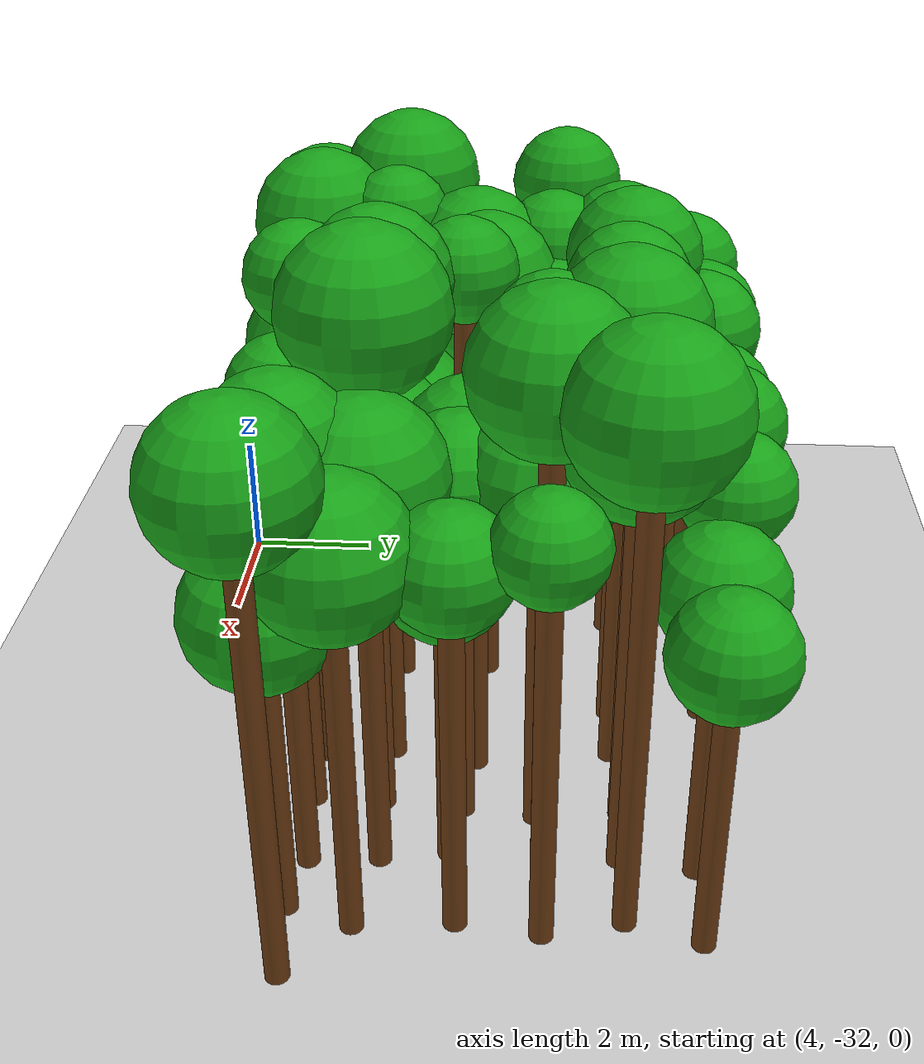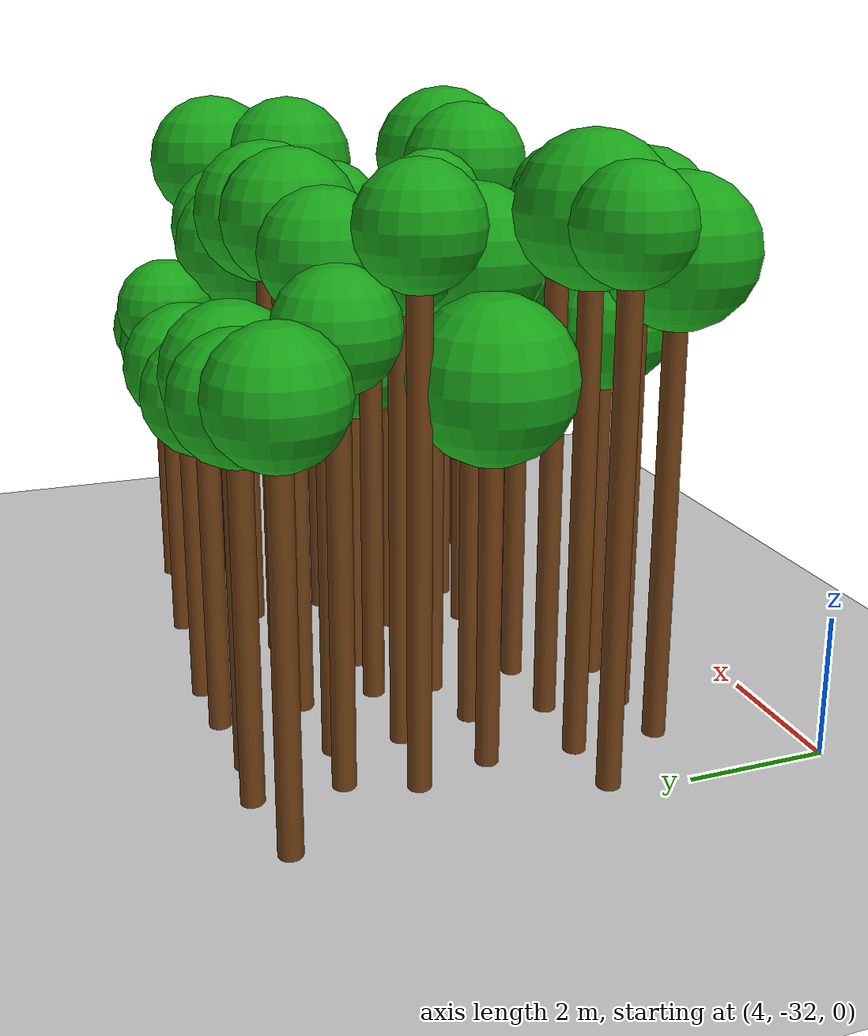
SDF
<sdf version="1.6">
 <world name="forest_world">
  <include><uri>model://sun</uri></include>
  <include><uri>model://ground_plane</uri></include>
  <model name="tree_1683_trunk">
   <static>true</static>
   <pose>4.26 -28.93 3.42 0 0 0</pose>
   <link name="link">
    <collision name="collision">
     <geometry><cylinder><radius>0.16</radius><length>6.84</length></cylinder></geometry>
    </collision>
    <visual name="visual">
     <geometry><cylinder><radius>0.16</radius><length>6.84</length></cylinder></geometry>
     <material><ambient>0.35 0.20 0.05 1</ambient><diffuse>0.45 0.25 0.08 1</diffuse></material>
    </visual>
   </link>
  </model>
  <model name="tree_1683_leaf">
   <static>true</static>
   <pose>4.26 -28.93 7.29 0 0 0</pose>
   <link name="link">
    <collision name="collision"><geometry><sphere><radius>0.76</radius></sphere></geometry></collision>
    <visual name="visual">
     <geometry><sphere><radius>0.76</radius></sphere></geometry>
     <material><ambient>0.05 0.45 0.05 1</ambient><diffuse>0.10 0.65 0.10 1</diffuse></material>
    </visual>
   </link>
  </model>
  <model name="tree_1687_trunk">
   <static>true</static>
   <pose>4.16 -24.68 2.57 0 0 0</pose>
   <link name="link">
    <collision name="collision">
     <geometry><cylinder><radius>0.16</radius><length>5.14</length></cylinder></geometry>
    </collision>
    <visual name="visual">
     <geometry><cylinder><radius>0.16</radius><length>5.14</length></cylinder></geometry>
     <material><ambient>0.35 0.20 0.05 1</ambient><diffuse>0.45 0.25 0.08 1</diffuse></material>
    </visual>
   </link>
  </model>
  <model name="tree_1687_leaf">
   <static>true</static>
   <pose>4.16 -24.68 5.64 0 0 0</pose>
   <link name="link">
    <collision name="collision"><geometry><sphere><radius>0.84</radius></sphere></geometry></collision>
    <visual name="visual">
     <geometry><sphere><radius>0.84</radius></sphere></geometry>
     <material><ambient>0.05 0.45 0.05 1</ambient><diffuse>0.10 0.65 0.10 1</diffuse></material>
    </visual>
   </link>
  </model>
  <model name="tree_1737_trunk">
   <static>true</static>
   <pose>5.24 -30.14 3.08 0 0 0</pose>
   <link name="link">
    <collision name="collision">
     <geometry><cylinder><radius>0.16</radius><length>6.17</length></cylinder></geometry>
    </collision>
    <visual name="visual">
     <geometry><cylinder><radius>0.16</radius><length>6.17</length></cylinder></geometry>
     <material><ambient>0.35 0.20 0.05 1</ambient><diffuse>0.45 0.25 0.08 1</diffuse></material>
    </visual>
   </link>
  </model>
  <model name="tree_1737_leaf">
   <static>true</static>
   <pose>5.24 -30.14 6.79 0 0 0</pose>
   <link name="link">
    <collision name="collision"><geometry><sphere><radius>1.03</radius></sphere></geometry></collision>
    <visual name="visual">
     <geometry><sphere><radius>1.03</radius></sphere></geometry>
     <material><ambient>0.05 0.45 0.05 1</ambient><diffuse>0.10 0.65 0.10 1</diffuse></material>
    </visual>
   </link>
  </model>
  <model name="tree_1738_trunk">
   <static>true</static>
   <pose>5.20 -28.89 3.38 0 0 0</pose>
   <link name="link">
    <collision name="collision">
     <geometry><cylinder><radius>0.16</radius><length>6.76</length></cylinder></geometry>
    </collision>
    <visual name="visual">
     <geometry><cylinder><radius>0.16</radius><length>6.76</length></cylinder></geometry>
     <material><ambient>0.35 0.20 0.05 1</ambient><diffuse>0.45 0.25 0.08 1</diffuse></material>
    </visual>
   </link>
  </model>
  <model name="tree_1738_leaf">
   <static>true</static>
   <pose>5.20 -28.89 7.36 0 0 0</pose>
   <link name="link">
    <collision name="collision"><geometry><sphere><radius>1.00</radius></sphere></geometry></collision>
    <visual name="visual">
     <geometry><sphere><radius>1.00</radius></sphere></geometry>
     <material><ambient>0.05 0.45 0.05 1</ambient><diffuse>0.10 0.65 0.10 1</diffuse></material>
    </visual>
   </link>
  </model>
  <model name="tree_1739_trunk">
   <static>true</static>
   <pose>5.29 -27.64 2.33 0 0 0</pose>
   <link name="link">
    <collision name="collision">
     <geometry><cylinder><radius>0.16</radius><length>4.65</length></cylinder></geometry>
    </collision>
    <visual name="visual">
     <geometry><cylinder><radius>0.16</radius><length>4.65</length></cylinder></geometry>
     <material><ambient>0.35 0.20 0.05 1</ambient><diffuse>0.45 0.25 0.08 1</diffuse></material>
    </visual>
   </link>
  </model>
  <model name="tree_1739_leaf">
   <static>true</static>
   <pose>5.29 -27.64 5.31 0 0 0</pose>
   <link name="link">
    <collision name="collision"><geometry><sphere><radius>1.10</radius></sphere></geometry></collision>
    <visual name="visual">
     <geometry><sphere><radius>1.10</radius></sphere></geometry>
     <material><ambient>0.05 0.45 0.05 1</ambient><diffuse>0.10 0.65 0.10 1</diffuse></material>
    </visual>
   </link>
  </model>
  <model name="tree_1740_trunk">
   <static>true</static>
   <pose>5.02 -26.59 3.40 0 0 0</pose>
   <link name="link">
    <collision name="collision">
     <geometry><cylinder><radius>0.16</radius><length>6.80</length></cylinder></geometry>
    </collision>
    <visual name="visual">
     <geometry><cylinder><radius>0.16</radius><length>6.80</length></cylinder></geometry>
     <material><ambient>0.35 0.20 0.05 1</ambient><diffuse>0.45 0.25 0.08 1</diffuse></material>
    </visual>
   </link>
  </model>
  <model name="tree_1740_leaf">
   <static>true</static>
   <pose>5.02 -26.59 7.28 0 0 0</pose>
   <link name="link">
    <collision name="collision"><geometry><sphere><radius>0.80</radius></sphere></geometry></collision>
    <visual name="visual">
     <geometry><sphere><radius>0.80</radius></sphere></geometry>
     <material><ambient>0.05 0.45 0.05 1</ambient><diffuse>0.10 0.65 0.10 1</diffuse></material>
    </visual>
   </link>
  </model>
  <model name="tree_1741_trunk">
   <static>true</static>
   <pose>5.35 -25.67 2.79 0 0 0</pose>
   <link name="link">
    <collision name="collision">
     <geometry><cylinder><radius>0.16</radius><length>5.58</length></cylinder></geometry>
    </collision>
    <visual name="visual">
     <geometry><cylinder><radius>0.16</radius><length>5.58</length></cylinder></geometry>
     <material><ambient>0.35 0.20 0.05 1</ambient><diffuse>0.45 0.25 0.08 1</diffuse></material>
    </visual>
   </link>
  </model>
  <model name="tree_1741_leaf">
   <static>true</static>
   <pose>5.35 -25.67 6.06 0 0 0</pose>
   <link name="link">
    <collision name="collision"><geometry><sphere><radius>0.80</radius></sphere></geometry></collision>
    <visual name="visual">
     <geometry><sphere><radius>0.80</radius></sphere></geometry>
     <material><ambient>0.05 0.45 0.05 1</ambient><diffuse>0.10 0.65 0.10 1</diffuse></material>
    </visual>
   </link>
  </model>
  <model name="tree_1742_trunk">
   <static>true</static>
   <pose>5.38 -24.47 2.41 0 0 0</pose>
   <link name="link">
    <collision name="collision">
     <geometry><cylinder><radius>0.16</radius><length>4.83</length></cylinder></geometry>
    </collision>
    <visual name="visual">
     <geometry><cylinder><radius>0.16</radius><length>4.83</length></cylinder></geometry>
     <material><ambient>0.35 0.20 0.05 1</ambient><diffuse>0.45 0.25 0.08 1</diffuse></material>
    </visual>
   </link>
  </model>
  <model name="tree_1742_leaf">
   <static>true</static>
   <pose>5.38 -24.47 5.33 0 0 0</pose>
   <link name="link">
    <collision name="collision"><geometry><sphere><radius>0.84</radius></sphere></geometry></collision>
    <visual name="visual">
     <geometry><sphere><radius>0.84</radius></sphere></geometry>
     <material><ambient>0.05 0.45 0.05 1</ambient><diffuse>0.10 0.65 0.10 1</diffuse></material>
    </visual>
   </link>
  </model>
  <model name="tree_1792_trunk">
   <static>true</static>
   <pose>6.17 -30.07 3.21 0 0 0</pose>
   <link name="link">
    <collision name="collision">
     <geometry><cylinder><radius>0.16</radius><length>6.42</length></cylinder></geometry>
    </collision>
    <visual name="visual">
     <geometry><cylinder><radius>0.16</radius><length>6.42</length></cylinder></geometry>
     <material><ambient>0.35 0.20 0.05 1</ambient><diffuse>0.45 0.25 0.08 1</diffuse></material>
    </visual>
   </link>
  </model>
  <model name="tree_1792_leaf">
   <static>true</static>
   <pose>6.17 -30.07 7.04 0 0 0</pose>
   <link name="link">
    <collision name="collision"><geometry><sphere><radius>1.02</radius></sphere></geometry></collision>
    <visual name="visual">
     <geometry><sphere><radius>1.02</radius></sphere></geometry>
     <material><ambient>0.05 0.45 0.05 1</ambient><diffuse>0.10 0.65 0.10 1</diffuse></material>
    </visual>
   </link>
  </model>
  <model name="tree_1793_trunk">
   <static>true</static>
   <pose>6.36 -28.97 3.37 0 0 0</pose>
   <link name="link">
    <collision name="collision">
     <geometry><cylinder><radius>0.16</radius><length>6.75</length></cylinder></geometry>
    </collision>
    <visual name="visual">
     <geometry><cylinder><radius>0.16</radius><length>6.75</length></cylinder></geometry>
     <material><ambient>0.35 0.20 0.05 1</ambient><diffuse>0.45 0.25 0.08 1</diffuse></material>
    </visual>
   </link>
  </model>
  <model name="tree_1793_leaf">
   <static>true</static>
   <pose>6.36 -28.97 7.18 0 0 0</pose>
   <link name="link">
    <collision name="collision"><geometry><sphere><radius>0.72</radius></sphere></geometry></collision>
    <visual name="visual">
     <geometry><sphere><radius>0.72</radius></sphere></geometry>
     <material><ambient>0.05 0.45 0.05 1</ambient><diffuse>0.10 0.65 0.10 1</diffuse></material>
    </visual>
   </link>
  </model>
  <model name="tree_1794_trunk">
   <static>true</static>
   <pose>6.46 -27.83 3.04 0 0 0</pose>
   <link name="link">
    <collision name="collision">
     <geometry><cylinder><radius>0.16</radius><length>6.09</length></cylinder></geometry>
    </collision>
    <visual name="visual">
     <geometry><cylinder><radius>0.16</radius><length>6.09</length></cylinder></geometry>
     <material><ambient>0.35 0.20 0.05 1</ambient><diffuse>0.45 0.25 0.08 1</diffuse></material>
    </visual>
   </link>
  </model>
  <model name="tree_1794_leaf">
   <static>true</static>
   <pose>6.46 -27.83 6.67 0 0 0</pose>
   <link name="link">
    <collision name="collision"><geometry><sphere><radius>0.97</radius></sphere></geometry></collision>
    <visual name="visual">
     <geometry><sphere><radius>0.97</radius></sphere></geometry>
     <material><ambient>0.05 0.45 0.05 1</ambient><diffuse>0.10 0.65 0.10 1</diffuse></material>
    </visual>
   </link>
  </model>
  <model name="tree_1795_trunk">
   <static>true</static>
   <pose>6.20 -26.73 3.15 0 0 0</pose>
   <link name="link">
    <collision name="collision">
     <geometry><cylinder><radius>0.16</radius><length>6.29</length></cylinder></geometry>
    </collision>
    <visual name="visual">
     <geometry><cylinder><radius>0.16</radius><length>6.29</length></cylinder></geometry>
     <material><ambient>0.35 0.20 0.05 1</ambient><diffuse>0.45 0.25 0.08 1</diffuse></material>
    </visual>
   </link>
  </model>
  <model name="tree_1795_leaf">
   <static>true</static>
   <pose>6.20 -26.73 6.76 0 0 0</pose>
   <link name="link">
    <collision name="collision"><geometry><sphere><radius>0.77</radius></sphere></geometry></collision>
    <visual name="visual">
     <geometry><sphere><radius>0.77</radius></sphere></geometry>
     <material><ambient>0.05 0.45 0.05 1</ambient><diffuse>0.10 0.65 0.10 1</diffuse></material>
    </visual>
   </link>
  </model>
  <model name="tree_1796_trunk">
   <static>true</static>
   <pose>6.21 -25.76 3.16 0 0 0</pose>
   <link name="link">
    <collision name="collision">
     <geometry><cylinder><radius>0.16</radius><length>6.32</length></cylinder></geometry>
    </collision>
    <visual name="visual">
     <geometry><cylinder><radius>0.16</radius><length>6.32</length></cylinder></geometry>
     <material><ambient>0.35 0.20 0.05 1</ambient><diffuse>0.45 0.25 0.08 1</diffuse></material>
    </visual>
   </link>
  </model>
  <model name="tree_1796_leaf">
   <static>true</static>
   <pose>6.21 -25.76 6.83 0 0 0</pose>
   <link name="link">
    <collision name="collision"><geometry><sphere><radius>0.84</radius></sphere></geometry></collision>
    <visual name="visual">
     <geometry><sphere><radius>0.84</radius></sphere></geometry>
     <material><ambient>0.05 0.45 0.05 1</ambient><diffuse>0.10 0.65 0.10 1</diffuse></material>
    </visual>
   </link>
  </model>
  <model name="tree_1797_trunk">
   <static>true</static>
   <pose>6.21 -24.55 2.46 0 0 0</pose>
   <link name="link">
    <collision name="collision">
     <geometry><cylinder><radius>0.16</radius><length>4.92</length></cylinder></geometry>
    </collision>
    <visual name="visual">
     <geometry><cylinder><radius>0.16</radius><length>4.92</length></cylinder></geometry>
     <material><ambient>0.35 0.20 0.05 1</ambient><diffuse>0.45 0.25 0.08 1</diffuse></material>
    </visual>
   </link>
  </model>
  <model name="tree_1797_leaf">
   <static>true</static>
   <pose>6.21 -24.55 5.45 0 0 0</pose>
   <link name="link">
    <collision name="collision"><geometry><sphere><radius>0.89</radius></sphere></geometry></collision>
    <visual name="visual">
     <geometry><sphere><radius>0.89</radius></sphere></geometry>
     <material><ambient>0.05 0.45 0.05 1</ambient><diffuse>0.10 0.65 0.10 1</diffuse></material>
    </visual>
   </link>
  </model>
  <model name="tree_1847_trunk">
   <static>true</static>
   <pose>7.23 -30.14 2.45 0 0 0</pose>
   <link name="link">
    <collision name="collision">
     <geometry><cylinder><radius>0.16</radius><length>4.91</length></cylinder></geometry>
    </collision>
    <visual name="visual">
     <geometry><cylinder><radius>0.16</radius><length>4.91</length></cylinder></geometry>
     <material><ambient>0.35 0.20 0.05 1</ambient><diffuse>0.45 0.25 0.08 1</diffuse></material>
    </visual>
   </link>
  </model>
  <model name="tree_1847_leaf">
   <static>true</static>
   <pose>7.23 -30.14 5.52 0 0 0</pose>
   <link name="link">
    <collision name="collision"><geometry><sphere><radius>1.02</radius></sphere></geometry></collision>
    <visual name="visual">
     <geometry><sphere><radius>1.02</radius></sphere></geometry>
     <material><ambient>0.05 0.45 0.05 1</ambient><diffuse>0.10 0.65 0.10 1</diffuse></material>
    </visual>
   </link>
  </model>
  <model name="tree_1848_trunk">
   <static>true</static>
   <pose>7.55 -28.95 2.06 0 0 0</pose>
   <link name="link">
    <collision name="collision">
     <geometry><cylinder><radius>0.16</radius><length>4.13</length></cylinder></geometry>
    </collision>
    <visual name="visual">
     <geometry><cylinder><radius>0.16</radius><length>4.13</length></cylinder></geometry>
     <material><ambient>0.35 0.20 0.05 1</ambient><diffuse>0.45 0.25 0.08 1</diffuse></material>
    </visual>
   </link>
  </model>
  <model name="tree_1848_leaf">
   <static>true</static>
   <pose>7.55 -28.95 4.76 0 0 0</pose>
   <link name="link">
    <collision name="collision"><geometry><sphere><radius>1.05</radius></sphere></geometry></collision>
    <visual name="visual">
     <geometry><sphere><radius>1.05</radius></sphere></geometry>
     <material><ambient>0.05 0.45 0.05 1</ambient><diffuse>0.10 0.65 0.10 1</diffuse></material>
    </visual>
   </link>
  </model>
  <model name="tree_1849_trunk">
   <static>true</static>
   <pose>7.46 -27.62 3.08 0 0 0</pose>
   <link name="link">
    <collision name="collision">
     <geometry><cylinder><radius>0.16</radius><length>6.16</length></cylinder></geometry>
    </collision>
    <visual name="visual">
     <geometry><cylinder><radius>0.16</radius><length>6.16</length></cylinder></geometry>
     <material><ambient>0.35 0.20 0.05 1</ambient><diffuse>0.45 0.25 0.08 1</diffuse></material>
    </visual>
   </link>
  </model>
  <model name="tree_1849_leaf">
   <static>true</static>
   <pose>7.46 -27.62 6.72 0 0 0</pose>
   <link name="link">
    <collision name="collision"><geometry><sphere><radius>0.93</radius></sphere></geometry></collision>
    <visual name="visual">
     <geometry><sphere><radius>0.93</radius></sphere></geometry>
     <material><ambient>0.05 0.45 0.05 1</ambient><diffuse>0.10 0.65 0.10 1</diffuse></material>
    </visual>
   </link>
  </model>
  <model name="tree_1850_trunk">
   <static>true</static>
   <pose>7.57 -26.74 2.74 0 0 0</pose>
   <link name="link">
    <collision name="collision">
     <geometry><cylinder><radius>0.16</radius><length>5.48</length></cylinder></geometry>
    </collision>
    <visual name="visual">
     <geometry><cylinder><radius>0.16</radius><length>5.48</length></cylinder></geometry>
     <material><ambient>0.35 0.20 0.05 1</ambient><diffuse>0.45 0.25 0.08 1</diffuse></material>
    </visual>
   </link>
  </model>
  <model name="tree_1850_leaf">
   <static>true</static>
   <pose>7.57 -26.74 6.05 0 0 0</pose>
   <link name="link">
    <collision name="collision"><geometry><sphere><radius>0.95</radius></sphere></geometry></collision>
    <visual name="visual">
     <geometry><sphere><radius>0.95</radius></sphere></geometry>
     <material><ambient>0.05 0.45 0.05 1</ambient><diffuse>0.10 0.65 0.10 1</diffuse></material>
    </visual>
   </link>
  </model>
  <model name="tree_1851_trunk">
   <static>true</static>
   <pose>7.51 -25.64 3.28 0 0 0</pose>
   <link name="link">
    <collision name="collision">
     <geometry><cylinder><radius>0.16</radius><length>6.56</length></cylinder></geometry>
    </collision>
    <visual name="visual">
     <geometry><cylinder><radius>0.16</radius><length>6.56</length></cylinder></geometry>
     <material><ambient>0.35 0.20 0.05 1</ambient><diffuse>0.45 0.25 0.08 1</diffuse></material>
    </visual>
   </link>
  </model>
  <model name="tree_1851_leaf">
   <static>true</static>
   <pose>7.51 -25.64 7.12 0 0 0</pose>
   <link name="link">
    <collision name="collision"><geometry><sphere><radius>0.93</radius></sphere></geometry></collision>
    <visual name="visual">
     <geometry><sphere><radius>0.93</radius></sphere></geometry>
     <material><ambient>0.05 0.45 0.05 1</ambient><diffuse>0.10 0.65 0.10 1</diffuse></material>
    </visual>
   </link>
  </model>
  <model name="tree_1852_trunk">
   <static>true</static>
   <pose>7.38 -24.41 2.18 0 0 0</pose>
   <link name="link">
    <collision name="collision">
     <geometry><cylinder><radius>0.16</radius><length>4.36</length></cylinder></geometry>
    </collision>
    <visual name="visual">
     <geometry><cylinder><radius>0.16</radius><length>4.36</length></cylinder></geometry>
     <material><ambient>0.35 0.20 0.05 1</ambient><diffuse>0.45 0.25 0.08 1</diffuse></material>
    </visual>
   </link>
  </model>
  <model name="tree_1852_leaf">
   <static>true</static>
   <pose>7.38 -24.41 4.88 0 0 0</pose>
   <link name="link">
    <collision name="collision"><geometry><sphere><radius>0.86</radius></sphere></geometry></collision>
    <visual name="visual">
     <geometry><sphere><radius>0.86</radius></sphere></geometry>
     <material><ambient>0.05 0.45 0.05 1</ambient><diffuse>0.10 0.65 0.10 1</diffuse></material>
    </visual>
   </link>
  </model>
  <model name="tree_1902_trunk">
   <static>true</static>
   <pose>8.60 -30.05 3.36 0 0 0</pose>
   <link name="link">
    <collision name="collision">
     <geometry><cylinder><radius>0.16</radius><length>6.72</length></cylinder></geometry>
    </collision>
    <visual name="visual">
     <geometry><cylinder><radius>0.16</radius><length>6.72</length></cylinder></geometry>
     <material><ambient>0.35 0.20 0.05 1</ambient><diffuse>0.45 0.25 0.08 1</diffuse></material>
    </visual>
   </link>
  </model>
  <model name="tree_1902_leaf">
   <static>true</static>
   <pose>8.60 -30.05 7.17 0 0 0</pose>
   <link name="link">
    <collision name="collision"><geometry><sphere><radius>0.75</radius></sphere></geometry></collision>
    <visual name="visual">
     <geometry><sphere><radius>0.75</radius></sphere></geometry>
     <material><ambient>0.05 0.45 0.05 1</ambient><diffuse>0.10 0.65 0.10 1</diffuse></material>
    </visual>
   </link>
  </model>
  <model name="tree_1903_trunk">
   <static>true</static>
   <pose>8.42 -29.07 2.19 0 0 0</pose>
   <link name="link">
    <collision name="collision">
     <geometry><cylinder><radius>0.16</radius><length>4.39</length></cylinder></geometry>
    </collision>
    <visual name="visual">
     <geometry><cylinder><radius>0.16</radius><length>4.39</length></cylinder></geometry>
     <material><ambient>0.35 0.20 0.05 1</ambient><diffuse>0.45 0.25 0.08 1</diffuse></material>
    </visual>
   </link>
  </model>
  <model name="tree_1903_leaf">
   <static>true</static>
   <pose>8.42 -29.07 4.92 0 0 0</pose>
   <link name="link">
    <collision name="collision"><geometry><sphere><radius>0.88</radius></sphere></geometry></collision>
    <visual name="visual">
     <geometry><sphere><radius>0.88</radius></sphere></geometry>
     <material><ambient>0.05 0.45 0.05 1</ambient><diffuse>0.10 0.65 0.10 1</diffuse></material>
    </visual>
   </link>
  </model>
  <model name="tree_1904_trunk">
   <static>true</static>
   <pose>8.33 -27.89 3.38 0 0 0</pose>
   <link name="link">
    <collision name="collision">
     <geometry><cylinder><radius>0.16</radius><length>6.76</length></cylinder></geometry>
    </collision>
    <visual name="visual">
     <geometry><cylinder><radius>0.16</radius><length>6.76</length></cylinder></geometry>
     <material><ambient>0.35 0.20 0.05 1</ambient><diffuse>0.45 0.25 0.08 1</diffuse></material>
    </visual>
   </link>
  </model>
  <model name="tree_1904_leaf">
   <static>true</static>
   <pose>8.33 -27.89 7.19 0 0 0</pose>
   <link name="link">
    <collision name="collision"><geometry><sphere><radius>0.72</radius></sphere></geometry></collision>
    <visual name="visual">
     <geometry><sphere><radius>0.72</radius></sphere></geometry>
     <material><ambient>0.05 0.45 0.05 1</ambient><diffuse>0.10 0.65 0.10 1</diffuse></material>
    </visual>
   </link>
  </model>
  <model name="tree_1905_trunk">
   <static>true</static>
   <pose>8.57 -26.76 2.19 0 0 0</pose>
   <link name="link">
    <collision name="collision">
     <geometry><cylinder><radius>0.16</radius><length>4.37</length></cylinder></geometry>
    </collision>
    <visual name="visual">
     <geometry><cylinder><radius>0.16</radius><length>4.37</length></cylinder></geometry>
     <material><ambient>0.35 0.20 0.05 1</ambient><diffuse>0.45 0.25 0.08 1</diffuse></material>
    </visual>
   </link>
  </model>
  <model name="tree_1905_leaf">
   <static>true</static>
   <pose>8.57 -26.76 4.92 0 0 0</pose>
   <link name="link">
    <collision name="collision"><geometry><sphere><radius>0.91</radius></sphere></geometry></collision>
    <visual name="visual">
     <geometry><sphere><radius>0.91</radius></sphere></geometry>
     <material><ambient>0.05 0.45 0.05 1</ambient><diffuse>0.10 0.65 0.10 1</diffuse></material>
    </visual>
   </link>
  </model>
  <model name="tree_1906_trunk">
   <static>true</static>
   <pose>8.51 -25.74 3.29 0 0 0</pose>
   <link name="link">
    <collision name="collision">
     <geometry><cylinder><radius>0.16</radius><length>6.58</length></cylinder></geometry>
    </collision>
    <visual name="visual">
     <geometry><cylinder><radius>0.16</radius><length>6.58</length></cylinder></geometry>
     <material><ambient>0.35 0.20 0.05 1</ambient><diffuse>0.45 0.25 0.08 1</diffuse></material>
    </visual>
   </link>
  </model>
  <model name="tree_1906_leaf">
   <static>true</static>
   <pose>8.51 -25.74 7.09 0 0 0</pose>
   <link name="link">
    <collision name="collision"><geometry><sphere><radius>0.84</radius></sphere></geometry></collision>
    <visual name="visual">
     <geometry><sphere><radius>0.84</radius></sphere></geometry>
     <material><ambient>0.05 0.45 0.05 1</ambient><diffuse>0.10 0.65 0.10 1</diffuse></material>
    </visual>
   </link>
  </model>
  <model name="tree_1907_trunk">
   <static>true</static>
   <pose>8.42 -24.33 2.25 0 0 0</pose>
   <link name="link">
    <collision name="collision">
     <geometry><cylinder><radius>0.16</radius><length>4.51</length></cylinder></geometry>
    </collision>
    <visual name="visual">
     <geometry><cylinder><radius>0.16</radius><length>4.51</length></cylinder></geometry>
     <material><ambient>0.35 0.20 0.05 1</ambient><diffuse>0.45 0.25 0.08 1</diffuse></material>
    </visual>
   </link>
  </model>
  <model name="tree_1907_leaf">
   <static>true</static>
   <pose>8.42 -24.33 5.03 0 0 0</pose>
   <link name="link">
    <collision name="collision"><geometry><sphere><radius>0.87</radius></sphere></geometry></collision>
    <visual name="visual">
     <geometry><sphere><radius>0.87</radius></sphere></geometry>
     <material><ambient>0.05 0.45 0.05 1</ambient><diffuse>0.10 0.65 0.10 1</diffuse></material>
    </visual>
   </link>
  </model>
  <model name="tree_1957_trunk">
   <static>true</static>
   <pose>9.70 -29.88 2.23 0 0 0</pose>
   <link name="link">
    <collision name="collision">
     <geometry><cylinder><radius>0.16</radius><length>4.47</length></cylinder></geometry>
    </collision>
    <visual name="visual">
     <geometry><cylinder><radius>0.16</radius><length>4.47</length></cylinder></geometry>
     <material><ambient>0.35 0.20 0.05 1</ambient><diffuse>0.45 0.25 0.08 1</diffuse></material>
    </visual>
   </link>
  </model>
  <model name="tree_1957_leaf">
   <static>true</static>
   <pose>9.70 -29.88 4.94 0 0 0</pose>
   <link name="link">
    <collision name="collision"><geometry><sphere><radius>0.78</radius></sphere></geometry></collision>
    <visual name="visual">
     <geometry><sphere><radius>0.78</radius></sphere></geometry>
     <material><ambient>0.05 0.45 0.05 1</ambient><diffuse>0.10 0.65 0.10 1</diffuse></material>
    </visual>
   </link>
  </model>
  <model name="tree_1958_trunk">
   <static>true</static>
   <pose>9.59 -28.88 3.50 0 0 0</pose>
   <link name="link">
    <collision name="collision">
     <geometry><cylinder><radius>0.16</radius><length>6.99</length></cylinder></geometry>
    </collision>
    <visual name="visual">
     <geometry><cylinder><radius>0.16</radius><length>6.99</length></cylinder></geometry>
     <material><ambient>0.35 0.20 0.05 1</ambient><diffuse>0.45 0.25 0.08 1</diffuse></material>
    </visual>
   </link>
  </model>
  <model name="tree_1958_leaf">
   <static>true</static>
   <pose>9.59 -28.88 7.56 0 0 0</pose>
   <link name="link">
    <collision name="collision"><geometry><sphere><radius>0.95</radius></sphere></geometry></collision>
    <visual name="visual">
     <geometry><sphere><radius>0.95</radius></sphere></geometry>
     <material><ambient>0.05 0.45 0.05 1</ambient><diffuse>0.10 0.65 0.10 1</diffuse></material>
    </visual>
   </link>
  </model>
  <model name="tree_1959_trunk">
   <static>true</static>
   <pose>9.76 -27.66 2.30 0 0 0</pose>
   <link name="link">
    <collision name="collision">
     <geometry><cylinder><radius>0.16</radius><length>4.61</length></cylinder></geometry>
    </collision>
    <visual name="visual">
     <geometry><cylinder><radius>0.16</radius><length>4.61</length></cylinder></geometry>
     <material><ambient>0.35 0.20 0.05 1</ambient><diffuse>0.45 0.25 0.08 1</diffuse></material>
    </visual>
   </link>
  </model>
  <model name="tree_1959_leaf">
   <static>true</static>
   <pose>9.76 -27.66 5.24 0 0 0</pose>
   <link name="link">
    <collision name="collision"><geometry><sphere><radius>1.06</radius></sphere></geometry></collision>
    <visual name="visual">
     <geometry><sphere><radius>1.06</radius></sphere></geometry>
     <material><ambient>0.05 0.45 0.05 1</ambient><diffuse>0.10 0.65 0.10 1</diffuse></material>
    </visual>
   </link>
  </model>
  <model name="tree_1960_trunk">
   <static>true</static>
   <pose>9.57 -26.70 3.21 0 0 0</pose>
   <link name="link">
    <collision name="collision">
     <geometry><cylinder><radius>0.16</radius><length>6.42</length></cylinder></geometry>
    </collision>
    <visual name="visual">
     <geometry><cylinder><radius>0.16</radius><length>6.42</length></cylinder></geometry>
     <material><ambient>0.35 0.20 0.05 1</ambient><diffuse>0.45 0.25 0.08 1</diffuse></material>
    </visual>
   </link>
  </model>
  <model name="tree_1960_leaf">
   <static>true</static>
   <pose>9.57 -26.70 6.90 0 0 0</pose>
   <link name="link">
    <collision name="collision"><geometry><sphere><radius>0.79</radius></sphere></geometry></collision>
    <visual name="visual">
     <geometry><sphere><radius>0.79</radius></sphere></geometry>
     <material><ambient>0.05 0.45 0.05 1</ambient><diffuse>0.10 0.65 0.10 1</diffuse></material>
    </visual>
   </link>
  </model>
  <model name="tree_1961_trunk">
   <static>true</static>
   <pose>9.49 -25.72 3.17 0 0 0</pose>
   <link name="link">
    <collision name="collision">
     <geometry><cylinder><radius>0.16</radius><length>6.34</length></cylinder></geometry>
    </collision>
    <visual name="visual">
     <geometry><cylinder><radius>0.16</radius><length>6.34</length></cylinder></geometry>
     <material><ambient>0.35 0.20 0.05 1</ambient><diffuse>0.45 0.25 0.08 1</diffuse></material>
    </visual>
   </link>
  </model>
  <model name="tree_1961_leaf">
   <static>true</static>
   <pose>9.49 -25.72 6.97 0 0 0</pose>
   <link name="link">
    <collision name="collision"><geometry><sphere><radius>1.04</radius></sphere></geometry></collision>
    <visual name="visual">
     <geometry><sphere><radius>1.04</radius></sphere></geometry>
     <material><ambient>0.05 0.45 0.05 1</ambient><diffuse>0.10 0.65 0.10 1</diffuse></material>
    </visual>
   </link>
  </model>
  <model name="tree_2012_trunk">
   <static>true</static>
   <pose>10.68 -29.91 3.03 0 0 0</pose>
   <link name="link">
    <collision name="collision">
     <geometry><cylinder><radius>0.16</radius><length>6.05</length></cylinder></geometry>
    </collision>
    <visual name="visual">
     <geometry><cylinder><radius>0.16</radius><length>6.05</length></cylinder></geometry>
     <material><ambient>0.35 0.20 0.05 1</ambient><diffuse>0.45 0.25 0.08 1</diffuse></material>
    </visual>
   </link>
  </model>
  <model name="tree_2012_leaf">
   <static>true</static>
   <pose>10.68 -29.91 6.51 0 0 0</pose>
   <link name="link">
    <collision name="collision"><geometry><sphere><radius>0.76</radius></sphere></geometry></collision>
    <visual name="visual">
     <geometry><sphere><radius>0.76</radius></sphere></geometry>
     <material><ambient>0.05 0.45 0.05 1</ambient><diffuse>0.10 0.65 0.10 1</diffuse></material>
    </visual>
   </link>
  </model>
  <model name="tree_2013_trunk">
   <static>true</static>
   <pose>10.69 -28.92 3.49 0 0 0</pose>
   <link name="link">
    <collision name="collision">
     <geometry><cylinder><radius>0.16</radius><length>6.98</length></cylinder></geometry>
    </collision>
    <visual name="visual">
     <geometry><cylinder><radius>0.16</radius><length>6.98</length></cylinder></geometry>
     <material><ambient>0.35 0.20 0.05 1</ambient><diffuse>0.45 0.25 0.08 1</diffuse></material>
    </visual>
   </link>
  </model>
  <model name="tree_2013_leaf">
   <static>true</static>
   <pose>10.69 -28.92 7.63 0 0 0</pose>
   <link name="link">
    <collision name="collision"><geometry><sphere><radius>1.08</radius></sphere></geometry></collision>
    <visual name="visual">
     <geometry><sphere><radius>1.08</radius></sphere></geometry>
     <material><ambient>0.05 0.45 0.05 1</ambient><diffuse>0.10 0.65 0.10 1</diffuse></material>
    </visual>
   </link>
  </model>
  <model name="tree_2014_trunk">
   <static>true</static>
   <pose>10.78 -27.79 2.43 0 0 0</pose>
   <link name="link">
    <collision name="collision">
     <geometry><cylinder><radius>0.16</radius><length>4.86</length></cylinder></geometry>
    </collision>
    <visual name="visual">
     <geometry><cylinder><radius>0.16</radius><length>4.86</length></cylinder></geometry>
     <material><ambient>0.35 0.20 0.05 1</ambient><diffuse>0.45 0.25 0.08 1</diffuse></material>
    </visual>
   </link>
  </model>
  <model name="tree_2014_leaf">
   <static>true</static>
   <pose>10.78 -27.79 5.42 0 0 0</pose>
   <link name="link">
    <collision name="collision"><geometry><sphere><radius>0.92</radius></sphere></geometry></collision>
    <visual name="visual">
     <geometry><sphere><radius>0.92</radius></sphere></geometry>
     <material><ambient>0.05 0.45 0.05 1</ambient><diffuse>0.10 0.65 0.10 1</diffuse></material>
    </visual>
   </link>
  </model>
  <model name="tree_2015_trunk">
   <static>true</static>
   <pose>10.88 -26.78 2.46 0 0 0</pose>
   <link name="link">
    <collision name="collision">
     <geometry><cylinder><radius>0.16</radius><length>4.93</length></cylinder></geometry>
    </collision>
    <visual name="visual">
     <geometry><cylinder><radius>0.16</radius><length>4.93</length></cylinder></geometry>
     <material><ambient>0.35 0.20 0.05 1</ambient><diffuse>0.45 0.25 0.08 1</diffuse></material>
    </visual>
   </link>
  </model>
  <model name="tree_2015_leaf">
   <static>true</static>
   <pose>10.88 -26.78 5.56 0 0 0</pose>
   <link name="link">
    <collision name="collision"><geometry><sphere><radius>1.05</radius></sphere></geometry></collision>
    <visual name="visual">
     <geometry><sphere><radius>1.05</radius></sphere></geometry>
     <material><ambient>0.05 0.45 0.05 1</ambient><diffuse>0.10 0.65 0.10 1</diffuse></material>
    </visual>
   </link>
  </model>
  <model name="tree_2016_trunk">
   <static>true</static>
   <pose>10.74 -25.59 2.85 0 0 0</pose>
   <link name="link">
    <collision name="collision">
     <geometry><cylinder><radius>0.16</radius><length>5.70</length></cylinder></geometry>
    </collision>
    <visual name="visual">
     <geometry><cylinder><radius>0.16</radius><length>5.70</length></cylinder></geometry>
     <material><ambient>0.35 0.20 0.05 1</ambient><diffuse>0.45 0.25 0.08 1</diffuse></material>
    </visual>
   </link>
  </model>
  <model name="tree_2016_leaf">
   <static>true</static>
   <pose>10.74 -25.59 6.32 0 0 0</pose>
   <link name="link">
    <collision name="collision"><geometry><sphere><radius>1.03</radius></sphere></geometry></collision>
    <visual name="visual">
     <geometry><sphere><radius>1.03</radius></sphere></geometry>
     <material><ambient>0.05 0.45 0.05 1</ambient><diffuse>0.10 0.65 0.10 1</diffuse></material>
    </visual>
   </link>
  </model>
  <model name="tree_2017_trunk">
   <static>true</static>
   <pose>10.75 -24.39 2.46 0 0 0</pose>
   <link name="link">
    <collision name="collision">
     <geometry><cylinder><radius>0.16</radius><length>4.93</length></cylinder></geometry>
    </collision>
    <visual name="visual">
     <geometry><cylinder><radius>0.16</radius><length>4.93</length></cylinder></geometry>
     <material><ambient>0.35 0.20 0.05 1</ambient><diffuse>0.45 0.25 0.08 1</diffuse></material>
    </visual>
   </link>
  </model>
  <model name="tree_2017_leaf">
   <static>true</static>
   <pose>10.75 -24.39 5.38 0 0 0</pose>
   <link name="link">
    <collision name="collision"><geometry><sphere><radius>0.76</radius></sphere></geometry></collision>
    <visual name="visual">
     <geometry><sphere><radius>0.76</radius></sphere></geometry>
     <material><ambient>0.05 0.45 0.05 1</ambient><diffuse>0.10 0.65 0.10 1</diffuse></material>
    </visual>
   </link>
  </model>
  <model name="tree_2067_trunk">
   <static>true</static>
   <pose>11.90 -29.82 2.94 0 0 0</pose>
   <link name="link">
    <collision name="collision">
     <geometry><cylinder><radius>0.16</radius><length>5.87</length></cylinder></geometry>
    </collision>
    <visual name="visual">
     <geometry><cylinder><radius>0.16</radius><length>5.87</length></cylinder></geometry>
     <material><ambient>0.35 0.20 0.05 1</ambient><diffuse>0.45 0.25 0.08 1</diffuse></material>
    </visual>
   </link>
  </model>
  <model name="tree_2067_leaf">
   <static>true</static>
   <pose>11.90 -29.82 6.44 0 0 0</pose>
   <link name="link">
    <collision name="collision"><geometry><sphere><radius>0.95</radius></sphere></geometry></collision>
    <visual name="visual">
     <geometry><sphere><radius>0.95</radius></sphere></geometry>
     <material><ambient>0.05 0.45 0.05 1</ambient><diffuse>0.10 0.65 0.10 1</diffuse></material>
    </visual>
   </link>
  </model>
  <model name="tree_2068_trunk">
   <static>true</static>
   <pose>11.81 -28.85 2.70 0 0 0</pose>
   <link name="link">
    <collision name="collision">
     <geometry><cylinder><radius>0.16</radius><length>5.40</length></cylinder></geometry>
    </collision>
    <visual name="visual">
     <geometry><cylinder><radius>0.16</radius><length>5.40</length></cylinder></geometry>
     <material><ambient>0.35 0.20 0.05 1</ambient><diffuse>0.45 0.25 0.08 1</diffuse></material>
    </visual>
   </link>
  </model>
  <model name="tree_2068_leaf">
   <static>true</static>
   <pose>11.81 -28.85 6.03 0 0 0</pose>
   <link name="link">
    <collision name="collision"><geometry><sphere><radius>1.05</radius></sphere></geometry></collision>
    <visual name="visual">
     <geometry><sphere><radius>1.05</radius></sphere></geometry>
     <material><ambient>0.05 0.45 0.05 1</ambient><diffuse>0.10 0.65 0.10 1</diffuse></material>
    </visual>
   </link>
  </model>
  <model name="tree_2069_trunk">
   <static>true</static>
   <pose>11.66 -27.92 2.03 0 0 0</pose>
   <link name="link">
    <collision name="collision">
     <geometry><cylinder><radius>0.16</radius><length>4.05</length></cylinder></geometry>
    </collision>
    <visual name="visual">
     <geometry><cylinder><radius>0.16</radius><length>4.05</length></cylinder></geometry>
     <material><ambient>0.35 0.20 0.05 1</ambient><diffuse>0.45 0.25 0.08 1</diffuse></material>
    </visual>
   </link>
  </model>
  <model name="tree_2069_leaf">
   <static>true</static>
   <pose>11.66 -27.92 4.55 0 0 0</pose>
   <link name="link">
    <collision name="collision"><geometry><sphere><radius>0.83</radius></sphere></geometry></collision>
    <visual name="visual">
     <geometry><sphere><radius>0.83</radius></sphere></geometry>
     <material><ambient>0.05 0.45 0.05 1</ambient><diffuse>0.10 0.65 0.10 1</diffuse></material>
    </visual>
   </link>
  </model>
  <model name="tree_2070_trunk">
   <static>true</static>
   <pose>11.92 -26.65 3.44 0 0 0</pose>
   <link name="link">
    <collision name="collision">
     <geometry><cylinder><radius>0.16</radius><length>6.88</length></cylinder></geometry>
    </collision>
    <visual name="visual">
     <geometry><cylinder><radius>0.16</radius><length>6.88</length></cylinder></geometry>
     <material><ambient>0.35 0.20 0.05 1</ambient><diffuse>0.45 0.25 0.08 1</diffuse></material>
    </visual>
   </link>
  </model>
  <model name="tree_2070_leaf">
   <static>true</static>
   <pose>11.92 -26.65 7.50 0 0 0</pose>
   <link name="link">
    <collision name="collision"><geometry><sphere><radius>1.03</radius></sphere></geometry></collision>
    <visual name="visual">
     <geometry><sphere><radius>1.03</radius></sphere></geometry>
     <material><ambient>0.05 0.45 0.05 1</ambient><diffuse>0.10 0.65 0.10 1</diffuse></material>
    </visual>
   </link>
  </model>
  <model name="tree_2071_trunk">
   <static>true</static>
   <pose>11.66 -25.62 2.96 0 0 0</pose>
   <link name="link">
    <collision name="collision">
     <geometry><cylinder><radius>0.16</radius><length>5.92</length></cylinder></geometry>
    </collision>
    <visual name="visual">
     <geometry><cylinder><radius>0.16</radius><length>5.92</length></cylinder></geometry>
     <material><ambient>0.35 0.20 0.05 1</ambient><diffuse>0.45 0.25 0.08 1</diffuse></material>
    </visual>
   </link>
  </model>
  <model name="tree_2071_leaf">
   <static>true</static>
   <pose>11.66 -25.62 6.51 0 0 0</pose>
   <link name="link">
    <collision name="collision"><geometry><sphere><radius>0.98</radius></sphere></geometry></collision>
    <visual name="visual">
     <geometry><sphere><radius>0.98</radius></sphere></geometry>
     <material><ambient>0.05 0.45 0.05 1</ambient><diffuse>0.10 0.65 0.10 1</diffuse></material>
    </visual>
   </link>
  </model>
  <model name="tree_2072_trunk">
   <static>true</static>
   <pose>11.80 -24.59 2.04 0 0 0</pose>
   <link name="link">
    <collision name="collision">
     <geometry><cylinder><radius>0.16</radius><length>4.08</length></cylinder></geometry>
    </collision>
    <visual name="visual">
     <geometry><cylinder><radius>0.16</radius><length>4.08</length></cylinder></geometry>
     <material><ambient>0.35 0.20 0.05 1</ambient><diffuse>0.45 0.25 0.08 1</diffuse></material>
    </visual>
   </link>
  </model>
  <model name="tree_2072_leaf">
   <static>true</static>
   <pose>11.80 -24.59 4.60 0 0 0</pose>
   <link name="link">
    <collision name="collision"><geometry><sphere><radius>0.86</radius></sphere></geometry></collision>
    <visual name="visual">
     <geometry><sphere><radius>0.86</radius></sphere></geometry>
     <material><ambient>0.05 0.45 0.05 1</ambient><diffuse>0.10 0.65 0.10 1</diffuse></material>
    </visual>
   </link>
  </model>
  <model name="tree_2122_trunk">
   <static>true</static>
   <pose>12.76 -29.98 2.07 0 0 0</pose>
   <link name="link">
    <collision name="collision">
     <geometry><cylinder><radius>0.16</radius><length>4.14</length></cylinder></geometry>
    </collision>
    <visual name="visual">
     <geometry><cylinder><radius>0.16</radius><length>4.14</length></cylinder></geometry>
     <material><ambient>0.35 0.20 0.05 1</ambient><diffuse>0.45 0.25 0.08 1</diffuse></material>
    </visual>
   </link>
  </model>
  <model name="tree_2122_leaf">
   <static>true</static>
   <pose>12.76 -29.98 4.73 0 0 0</pose>
   <link name="link">
    <collision name="collision"><geometry><sphere><radius>0.98</radius></sphere></geometry></collision>
    <visual name="visual">
     <geometry><sphere><radius>0.98</radius></sphere></geometry>
     <material><ambient>0.05 0.45 0.05 1</ambient><diffuse>0.10 0.65 0.10 1</diffuse></material>
    </visual>
   </link>
  </model>
  <model name="tree_2123_trunk">
   <static>true</static>
   <pose>13.04 -29.08 2.56 0 0 0</pose>
   <link name="link">
    <collision name="collision">
     <geometry><cylinder><radius>0.16</radius><length>5.11</length></cylinder></geometry>
    </collision>
    <visual name="visual">
     <geometry><cylinder><radius>0.16</radius><length>5.11</length></cylinder></geometry>
     <material><ambient>0.35 0.20 0.05 1</ambient><diffuse>0.45 0.25 0.08 1</diffuse></material>
    </visual>
   </link>
  </model>
  <model name="tree_2123_leaf">
   <static>true</static>
   <pose>13.04 -29.08 5.73 0 0 0</pose>
   <link name="link">
    <collision name="collision"><geometry><sphere><radius>1.03</radius></sphere></geometry></collision>
    <visual name="visual">
     <geometry><sphere><radius>1.03</radius></sphere></geometry>
     <material><ambient>0.05 0.45 0.05 1</ambient><diffuse>0.10 0.65 0.10 1</diffuse></material>
    </visual>
   </link>
  </model>
  <model name="tree_2124_trunk">
   <static>true</static>
   <pose>12.91 -27.75 2.53 0 0 0</pose>
   <link name="link">
    <collision name="collision">
     <geometry><cylinder><radius>0.16</radius><length>5.06</length></cylinder></geometry>
    </collision>
    <visual name="visual">
     <geometry><cylinder><radius>0.16</radius><length>5.06</length></cylinder></geometry>
     <material><ambient>0.35 0.20 0.05 1</ambient><diffuse>0.45 0.25 0.08 1</diffuse></material>
    </visual>
   </link>
  </model>
  <model name="tree_2124_leaf">
   <static>true</static>
   <pose>12.91 -27.75 5.53 0 0 0</pose>
   <link name="link">
    <collision name="collision"><geometry><sphere><radius>0.79</radius></sphere></geometry></collision>
    <visual name="visual">
     <geometry><sphere><radius>0.79</radius></sphere></geometry>
     <material><ambient>0.05 0.45 0.05 1</ambient><diffuse>0.10 0.65 0.10 1</diffuse></material>
    </visual>
   </link>
  </model>
  <model name="tree_2125_trunk">
   <static>true</static>
   <pose>13.05 -26.63 2.75 0 0 0</pose>
   <link name="link">
    <collision name="collision">
     <geometry><cylinder><radius>0.16</radius><length>5.51</length></cylinder></geometry>
    </collision>
    <visual name="visual">
     <geometry><cylinder><radius>0.16</radius><length>5.51</length></cylinder></geometry>
     <material><ambient>0.35 0.20 0.05 1</ambient><diffuse>0.45 0.25 0.08 1</diffuse></material>
    </visual>
   </link>
  </model>
  <model name="tree_2125_leaf">
   <static>true</static>
   <pose>13.05 -26.63 5.93 0 0 0</pose>
   <link name="link">
    <collision name="collision"><geometry><sphere><radius>0.70</radius></sphere></geometry></collision>
    <visual name="visual">
     <geometry><sphere><radius>0.70</radius></sphere></geometry>
     <material><ambient>0.05 0.45 0.05 1</ambient><diffuse>0.10 0.65 0.10 1</diffuse></material>
    </visual>
   </link>
  </model>
  <model name="tree_2126_trunk">
   <static>true</static>
   <pose>12.79 -25.56 3.43 0 0 0</pose>
   <link name="link">
    <collision name="collision">
     <geometry><cylinder><radius>0.16</radius><length>6.85</length></cylinder></geometry>
    </collision>
    <visual name="visual">
     <geometry><cylinder><radius>0.16</radius><length>6.85</length></cylinder></geometry>
     <material><ambient>0.35 0.20 0.05 1</ambient><diffuse>0.45 0.25 0.08 1</diffuse></material>
    </visual>
   </link>
  </model>
  <model name="tree_2126_leaf">
   <static>true</static>
   <pose>12.79 -25.56 7.48 0 0 0</pose>
   <link name="link">
    <collision name="collision"><geometry><sphere><radius>1.05</radius></sphere></geometry></collision>
    <visual name="visual">
     <geometry><sphere><radius>1.05</radius></sphere></geometry>
     <material><ambient>0.05 0.45 0.05 1</ambient><diffuse>0.10 0.65 0.10 1</diffuse></material>
    </visual>
   </link>
  </model>
  <model name="tree_2127_trunk">
   <static>true</static>
   <pose>13.08 -24.55 2.05 0 0 0</pose>
   <link name="link">
    <collision name="collision">
     <geometry><cylinder><radius>0.16</radius><length>4.11</length></cylinder></geometry>
    </collision>
    <visual name="visual">
     <geometry><cylinder><radius>0.16</radius><length>4.11</length></cylinder></geometry>
     <material><ambient>0.35 0.20 0.05 1</ambient><diffuse>0.45 0.25 0.08 1</diffuse></material>
    </visual>
   </link>
  </model>
  <model name="tree_2127_leaf">
   <static>true</static>
   <pose>13.08 -24.55 4.59 0 0 0</pose>
   <link name="link">
    <collision name="collision"><geometry><sphere><radius>0.80</radius></sphere></geometry></collision>
    <visual name="visual">
     <geometry><sphere><radius>0.80</radius></sphere></geometry>
     <material><ambient>0.05 0.45 0.05 1</ambient><diffuse>0.10 0.65 0.10 1</diffuse></material>
    </visual>
   </link>
  </model>
  <model name="tree_2177_trunk">
   <static>true</static>
   <pose>13.90 -29.90 3.27 0 0 0</pose>
   <link name="link">
    <collision name="collision">
     <geometry><cylinder><radius>0.16</radius><length>6.54</length></cylinder></geometry>
    </collision>
    <visual name="visual">
     <geometry><cylinder><radius>0.16</radius><length>6.54</length></cylinder></geometry>
     <material><ambient>0.35 0.20 0.05 1</ambient><diffuse>0.45 0.25 0.08 1</diffuse></material>
    </visual>
   </link>
  </model>
  <model name="tree_2177_leaf">
   <static>true</static>
   <pose>13.90 -29.90 7.13 0 0 0</pose>
   <link name="link">
    <collision name="collision"><geometry><sphere><radius>0.98</radius></sphere></geometry></collision>
    <visual name="visual">
     <geometry><sphere><radius>0.98</radius></sphere></geometry>
     <material><ambient>0.05 0.45 0.05 1</ambient><diffuse>0.10 0.65 0.10 1</diffuse></material>
    </visual>
   </link>
  </model>
 </world>
</sdf>
